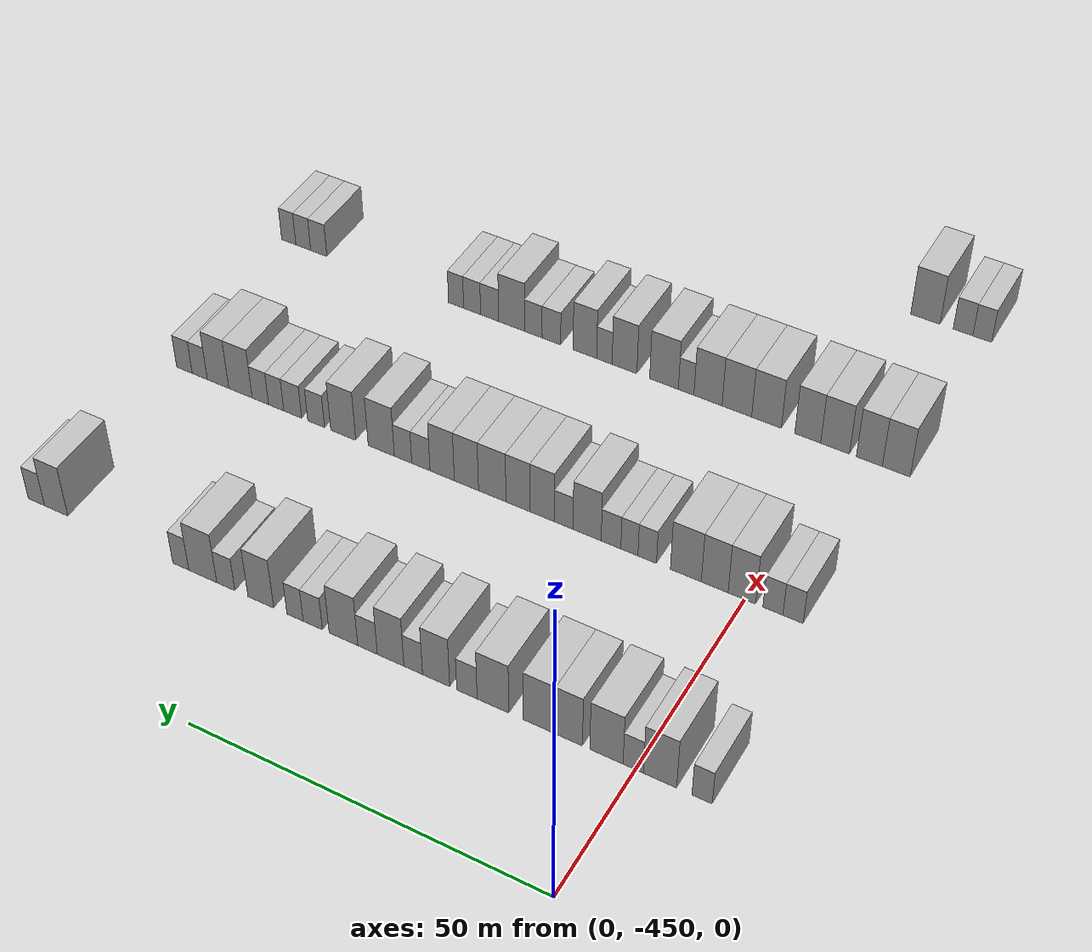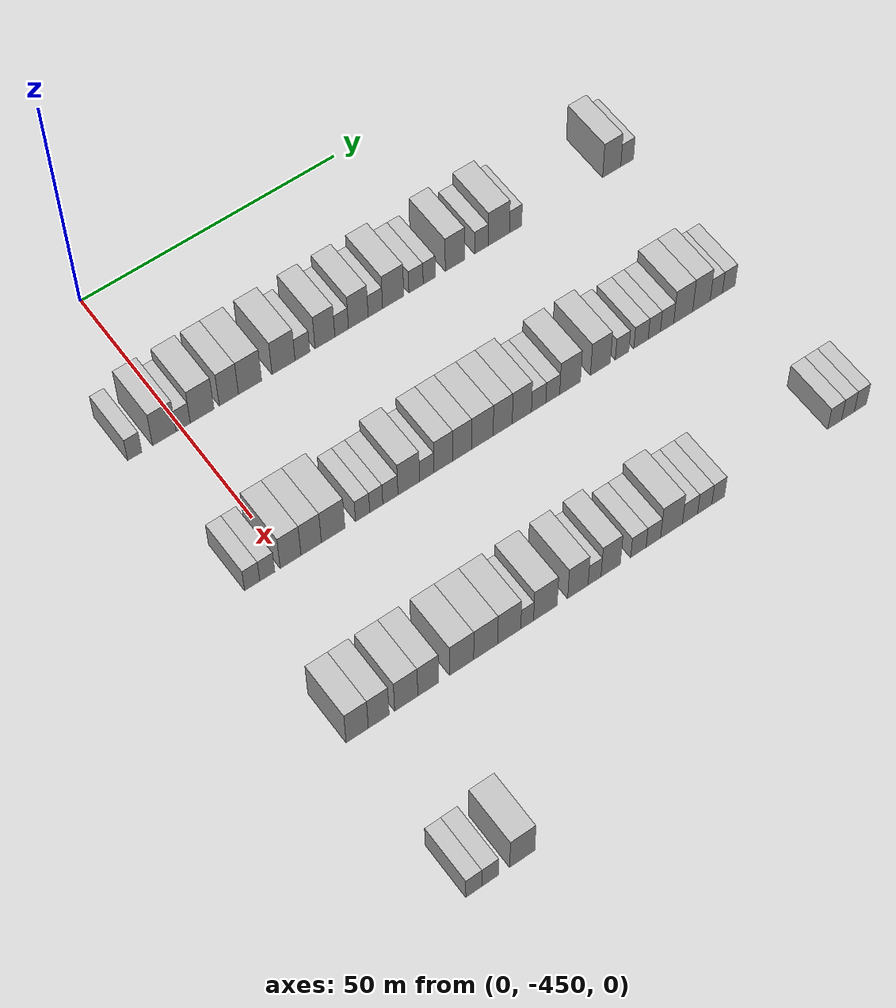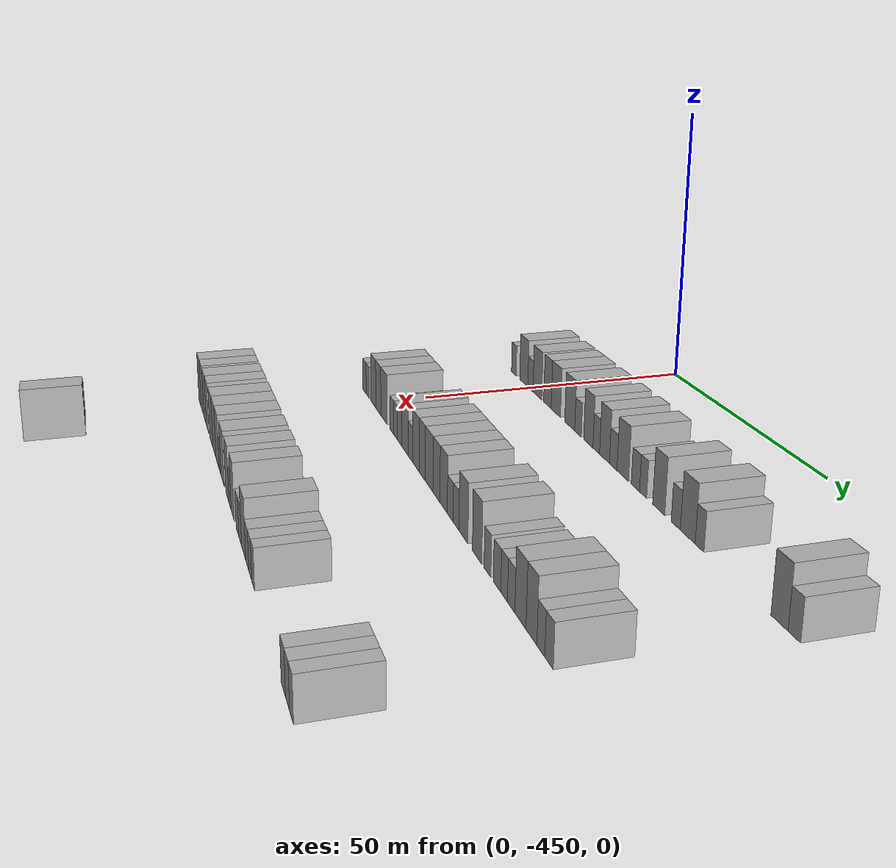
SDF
<sdf version="1.6">
 <world name="default">
  <model name="building_1">
   <static>1</static>
   <pose>25.0000 -458.6849 0 0.000000 0.000000 0.000000</pose>
   <link name="link">
    <pose>0 0 3.00 0 0 0</pose>
    <collision name="collision"><geometry><box><size>10.0000 2.6303 6.0000</size></box></geometry></collision>
    <visual name="visual">
     <cast_shadows>0</cast_shadows>
     <geometry><box><size>10.0000 2.6303 6.0000</size></box></geometry>
     <material>
      <script>
       <uri>model://HANNAS_wall/materials/scripts</uri>
       <uri>model://HANNAS_wall/materials/textures</uri>
       <name>vrc/HANNAS_wall</name>
      </script>
     </material>
    </visual>
   </link>
  </model>
  <model name="building_2">
   <static>1</static>
   <pose>25.0000 -453.1732 0 0.000000 0.000000 0.000000</pose>
   <link name="link">
    <pose>0 0 4.50 0 0 0</pose>
    <collision name="collision"><geometry><box><size>10.0000 4.3930 9.0000</size></box></geometry></collision>
    <visual name="visual">
     <cast_shadows>0</cast_shadows>
     <geometry><box><size>10.0000 4.3930 9.0000</size></box></geometry>
     <material>
      <script>
       <uri>model://HANNAS_wall/materials/scripts</uri>
       <uri>model://HANNAS_wall/materials/textures</uri>
       <name>vrc/HANNAS_wall</name>
      </script>
     </material>
    </visual>
   </link>
  </model>
  <model name="building_3">
   <static>1</static>
   <pose>25.0000 -449.6349 0 0.000000 0.000000 0.000000</pose>
   <link name="link">
    <pose>0 0 3.00 0 0 0</pose>
    <collision name="collision"><geometry><box><size>10.0000 2.6837 6.0000</size></box></geometry></collision>
    <visual name="visual">
     <cast_shadows>0</cast_shadows>
     <geometry><box><size>10.0000 2.6837 6.0000</size></box></geometry>
     <material>
      <script>
       <uri>model://HANNAS_wall/materials/scripts</uri>
       <uri>model://HANNAS_wall/materials/textures</uri>
       <name>vrc/HANNAS_wall</name>
      </script>
     </material>
    </visual>
   </link>
  </model>
  <model name="building_4">
   <static>1</static>
   <pose>25.0000 -446.0684 0 0.000000 0.000000 0.000000</pose>
   <link name="link">
    <pose>0 0 4.50 0 0 0</pose>
    <collision name="collision"><geometry><box><size>10.0000 4.4493 9.0000</size></box></geometry></collision>
    <visual name="visual">
     <cast_shadows>0</cast_shadows>
     <geometry><box><size>10.0000 4.4493 9.0000</size></box></geometry>
     <material>
      <script>
       <uri>model://HANNAS_wall/materials/scripts</uri>
       <uri>model://HANNAS_wall/materials/textures</uri>
       <name>vrc/HANNAS_wall</name>
      </script>
     </material>
    </visual>
   </link>
  </model>
  <model name="building_5">
   <static>1</static>
   <pose>25.0000 -441.0170 0 0.000000 0.000000 0.000000</pose>
   <link name="link">
    <pose>0 0 4.50 0 0 0</pose>
    <collision name="collision"><geometry><box><size>10.0000 3.6536 9.0000</size></box></geometry></collision>
    <visual name="visual">
     <cast_shadows>0</cast_shadows>
     <geometry><box><size>10.0000 3.6536 9.0000</size></box></geometry>
     <material>
      <script>
       <uri>model://HANNAS_wall/materials/scripts</uri>
       <uri>model://HANNAS_wall/materials/textures</uri>
       <name>vrc/HANNAS_wall</name>
      </script>
     </material>
    </visual>
   </link>
  </model>
  <model name="building_6">
   <static>1</static>
   <pose>25.0000 -436.9849 0 0.000000 0.000000 0.000000</pose>
   <link name="link">
    <pose>0 0 4.50 0 0 0</pose>
    <collision name="collision"><geometry><box><size>10.0000 4.4105 9.0000</size></box></geometry></collision>
    <visual name="visual">
     <cast_shadows>0</cast_shadows>
     <geometry><box><size>10.0000 4.4105 9.0000</size></box></geometry>
     <material>
      <script>
       <uri>model://HANNAS_wall/materials/scripts</uri>
       <uri>model://HANNAS_wall/materials/textures</uri>
       <name>vrc/HANNAS_wall</name>
      </script>
     </material>
    </visual>
   </link>
  </model>
  <model name="building_7">
   <static>1</static>
   <pose>25.0000 -430.5665 0 0.000000 0.000000 0.000000</pose>
   <link name="link">
    <pose>0 0 4.50 0 0 0</pose>
    <collision name="collision"><geometry><box><size>10.0000 4.4264 9.0000</size></box></geometry></collision>
    <visual name="visual">
     <cast_shadows>0</cast_shadows>
     <geometry><box><size>10.0000 4.4264 9.0000</size></box></geometry>
     <material>
      <script>
       <uri>model://HANNAS_wall/materials/scripts</uri>
       <uri>model://HANNAS_wall/materials/textures</uri>
       <name>vrc/HANNAS_wall</name>
      </script>
     </material>
    </visual>
   </link>
  </model>
  <model name="building_8">
   <static>1</static>
   <pose>25.0000 -426.9174 0 0.000000 0.000000 0.000000</pose>
   <link name="link">
    <pose>0 0 3.00 0 0 0</pose>
    <collision name="collision"><geometry><box><size>10.0000 2.8718 6.0000</size></box></geometry></collision>
    <visual name="visual">
     <cast_shadows>0</cast_shadows>
     <geometry><box><size>10.0000 2.8718 6.0000</size></box></geometry>
     <material>
      <script>
       <uri>model://HANNAS_wall/materials/scripts</uri>
       <uri>model://HANNAS_wall/materials/textures</uri>
       <name>vrc/HANNAS_wall</name>
      </script>
     </material>
    </visual>
   </link>
  </model>
  <model name="building_9">
   <static>1</static>
   <pose>25.0000 -422.5503 0 0.000000 0.000000 0.000000</pose>
   <link name="link">
    <pose>0 0 4.50 0 0 0</pose>
    <collision name="collision"><geometry><box><size>10.0000 3.8625 9.0000</size></box></geometry></collision>
    <visual name="visual">
     <cast_shadows>0</cast_shadows>
     <geometry><box><size>10.0000 3.8625 9.0000</size></box></geometry>
     <material>
      <script>
       <uri>model://HANNAS_wall/materials/scripts</uri>
       <uri>model://HANNAS_wall/materials/textures</uri>
       <name>vrc/HANNAS_wall</name>
      </script>
     </material>
    </visual>
   </link>
  </model>
  <model name="building_10">
   <static>1</static>
   <pose>25.0000 -419.2839 0 0.000000 0.000000 0.000000</pose>
   <link name="link">
    <pose>0 0 3.00 0 0 0</pose>
    <collision name="collision"><geometry><box><size>10.0000 2.6702 6.0000</size></box></geometry></collision>
    <visual name="visual">
     <cast_shadows>0</cast_shadows>
     <geometry><box><size>10.0000 2.6702 6.0000</size></box></geometry>
     <material>
      <script>
       <uri>model://HANNAS_wall/materials/scripts</uri>
       <uri>model://HANNAS_wall/materials/textures</uri>
       <name>vrc/HANNAS_wall</name>
      </script>
     </material>
    </visual>
   </link>
  </model>
  <model name="building_11">
   <static>1</static>
   <pose>25.0000 -416.0189 0 0.000000 0.000000 0.000000</pose>
   <link name="link">
    <pose>0 0 4.50 0 0 0</pose>
    <collision name="collision"><geometry><box><size>10.0000 3.8599 9.0000</size></box></geometry></collision>
    <visual name="visual">
     <cast_shadows>0</cast_shadows>
     <geometry><box><size>10.0000 3.8599 9.0000</size></box></geometry>
     <material>
      <script>
       <uri>model://HANNAS_wall/materials/scripts</uri>
       <uri>model://HANNAS_wall/materials/textures</uri>
       <name>vrc/HANNAS_wall</name>
      </script>
     </material>
    </visual>
   </link>
  </model>
  <model name="building_12">
   <static>1</static>
   <pose>25.0000 -412.6643 0 0.000000 0.000000 0.000000</pose>
   <link name="link">
    <pose>0 0 3.00 0 0 0</pose>
    <collision name="collision"><geometry><box><size>10.0000 2.8493 6.0000</size></box></geometry></collision>
    <visual name="visual">
     <cast_shadows>0</cast_shadows>
     <geometry><box><size>10.0000 2.8493 6.0000</size></box></geometry>
     <material>
      <script>
       <uri>model://HANNAS_wall/materials/scripts</uri>
       <uri>model://HANNAS_wall/materials/textures</uri>
       <name>vrc/HANNAS_wall</name>
      </script>
     </material>
    </visual>
   </link>
  </model>
  <model name="building_13">
   <static>1</static>
   <pose>25.0000 -409.1376 0 0.000000 0.000000 0.000000</pose>
   <link name="link">
    <pose>0 0 4.50 0 0 0</pose>
    <collision name="collision"><geometry><box><size>10.0000 4.2041 9.0000</size></box></geometry></collision>
    <visual name="visual">
     <cast_shadows>0</cast_shadows>
     <geometry><box><size>10.0000 4.2041 9.0000</size></box></geometry>
     <material>
      <script>
       <uri>model://HANNAS_wall/materials/scripts</uri>
       <uri>model://HANNAS_wall/materials/textures</uri>
       <name>vrc/HANNAS_wall</name>
      </script>
     </material>
    </visual>
   </link>
  </model>
  <model name="building_14">
   <static>1</static>
   <pose>25.0000 -404.6051 0 0.000000 0.000000 0.000000</pose>
   <link name="link">
    <pose>0 0 3.00 0 0 0</pose>
    <collision name="collision"><geometry><box><size>10.0000 2.8609 6.0000</size></box></geometry></collision>
    <visual name="visual">
     <cast_shadows>0</cast_shadows>
     <geometry><box><size>10.0000 2.8609 6.0000</size></box></geometry>
     <material>
      <script>
       <uri>model://HANNAS_wall/materials/scripts</uri>
       <uri>model://HANNAS_wall/materials/textures</uri>
       <name>vrc/HANNAS_wall</name>
      </script>
     </material>
    </visual>
   </link>
  </model>
  <model name="building_15">
   <static>1</static>
   <pose>25.0000 -401.9557 0 0.000000 0.000000 0.000000</pose>
   <link name="link">
    <pose>0 0 3.00 0 0 0</pose>
    <collision name="collision"><geometry><box><size>10.0000 2.4379 6.0000</size></box></geometry></collision>
    <visual name="visual">
     <cast_shadows>0</cast_shadows>
     <geometry><box><size>10.0000 2.4379 6.0000</size></box></geometry>
     <material>
      <script>
       <uri>model://HANNAS_wall/materials/scripts</uri>
       <uri>model://HANNAS_wall/materials/textures</uri>
       <name>vrc/HANNAS_wall</name>
      </script>
     </material>
    </visual>
   </link>
  </model>
  <model name="building_16">
   <static>1</static>
   <pose>25.0000 -396.7870 0 0.000000 0.000000 0.000000</pose>
   <link name="link">
    <pose>0 0 4.50 0 0 0</pose>
    <collision name="collision"><geometry><box><size>10.0000 3.8993 9.0000</size></box></geometry></collision>
    <visual name="visual">
     <cast_shadows>0</cast_shadows>
     <geometry><box><size>10.0000 3.8993 9.0000</size></box></geometry>
     <material>
      <script>
       <uri>model://HANNAS_wall/materials/scripts</uri>
       <uri>model://HANNAS_wall/materials/textures</uri>
       <name>vrc/HANNAS_wall</name>
      </script>
     </material>
    </visual>
   </link>
  </model>
  <model name="building_17">
   <static>1</static>
   <pose>25.0000 -391.4373 0 0.000000 0.000000 0.000000</pose>
   <link name="link">
    <pose>0 0 3.00 0 0 0</pose>
    <collision name="collision"><geometry><box><size>10.0000 2.8001 6.0000</size></box></geometry></collision>
    <visual name="visual">
     <cast_shadows>0</cast_shadows>
     <geometry><box><size>10.0000 2.8001 6.0000</size></box></geometry>
     <material>
      <script>
       <uri>model://HANNAS_wall/materials/scripts</uri>
       <uri>model://HANNAS_wall/materials/textures</uri>
       <name>vrc/HANNAS_wall</name>
      </script>
     </material>
    </visual>
   </link>
  </model>
  <model name="building_18">
   <static>1</static>
   <pose>25.0000 -387.8711 0 0.000000 0.000000 0.000000</pose>
   <link name="link">
    <pose>0 0 4.50 0 0 0</pose>
    <collision name="collision"><geometry><box><size>10.0000 4.3323 9.0000</size></box></geometry></collision>
    <visual name="visual">
     <cast_shadows>0</cast_shadows>
     <geometry><box><size>10.0000 4.3323 9.0000</size></box></geometry>
     <material>
      <script>
       <uri>model://HANNAS_wall/materials/scripts</uri>
       <uri>model://HANNAS_wall/materials/textures</uri>
       <name>vrc/HANNAS_wall</name>
      </script>
     </material>
    </visual>
   </link>
  </model>
  <model name="building_19">
   <static>1</static>
   <pose>25.0000 -384.4627 0 0.000000 0.000000 0.000000</pose>
   <link name="link">
    <pose>0 0 3.00 0 0 0</pose>
    <collision name="collision"><geometry><box><size>10.0000 2.4846 6.0000</size></box></geometry></collision>
    <visual name="visual">
     <cast_shadows>0</cast_shadows>
     <geometry><box><size>10.0000 2.4846 6.0000</size></box></geometry>
     <material>
      <script>
       <uri>model://HANNAS_wall/materials/scripts</uri>
       <uri>model://HANNAS_wall/materials/textures</uri>
       <name>vrc/HANNAS_wall</name>
      </script>
     </material>
    </visual>
   </link>
  </model>
  <model name="building_20">
   <static>1</static>
   <pose>25.0000 -364.5048 0 0.000000 0.000000 0.000000</pose>
   <link name="link">
    <pose>0 0 4.50 0 0 0</pose>
    <collision name="collision"><geometry><box><size>10.0000 3.8104 9.0000</size></box></geometry></collision>
    <visual name="visual">
     <cast_shadows>0</cast_shadows>
     <geometry><box><size>10.0000 3.8104 9.0000</size></box></geometry>
     <material>
      <script>
       <uri>model://HANNAS_wall/materials/scripts</uri>
       <uri>model://HANNAS_wall/materials/textures</uri>
       <name>vrc/HANNAS_wall</name>
      </script>
     </material>
    </visual>
   </link>
  </model>
  <model name="building_21">
   <static>1</static>
   <pose>25.0000 -361.2578 0 0.000000 0.000000 0.000000</pose>
   <link name="link">
    <pose>0 0 3.00 0 0 0</pose>
    <collision name="collision"><geometry><box><size>10.0000 2.6835 6.0000</size></box></geometry></collision>
    <visual name="visual">
     <cast_shadows>0</cast_shadows>
     <geometry><box><size>10.0000 2.6835 6.0000</size></box></geometry>
     <material>
      <script>
       <uri>model://HANNAS_wall/materials/scripts</uri>
       <uri>model://HANNAS_wall/materials/textures</uri>
       <name>vrc/HANNAS_wall</name>
      </script>
     </material>
    </visual>
   </link>
  </model>
  <model name="building_224">
   <static>1</static>
   <pose>55.0000 -456.6061 0 0.000000 0.000000 0.000000</pose>
   <link name="link">
    <pose>0 0 3.00 0 0 0</pose>
    <collision name="collision"><geometry><box><size>10.0000 2.7877 6.0000</size></box></geometry></collision>
    <visual name="visual">
     <cast_shadows>0</cast_shadows>
     <geometry><box><size>10.0000 2.7877 6.0000</size></box></geometry>
     <material>
      <script>
       <uri>model://HANNAS_wall/materials/scripts</uri>
       <uri>model://HANNAS_wall/materials/textures</uri>
       <name>vrc/HANNAS_wall</name>
      </script>
     </material>
    </visual>
   </link>
  </model>
  <model name="building_225">
   <static>1</static>
   <pose>55.0000 -453.8329 0 0.000000 0.000000 0.000000</pose>
   <link name="link">
    <pose>0 0 3.00 0 0 0</pose>
    <collision name="collision"><geometry><box><size>10.0000 2.7588 6.0000</size></box></geometry></collision>
    <visual name="visual">
     <cast_shadows>0</cast_shadows>
     <geometry><box><size>10.0000 2.7588 6.0000</size></box></geometry>
     <material>
      <script>
       <uri>model://HANNAS_wall/materials/scripts</uri>
       <uri>model://HANNAS_wall/materials/textures</uri>
       <name>vrc/HANNAS_wall</name>
      </script>
     </material>
    </visual>
   </link>
  </model>
  <model name="building_226">
   <static>1</static>
   <pose>55.0000 -449.5311 0 0.000000 0.000000 0.000000</pose>
   <link name="link">
    <pose>0 0 4.50 0 0 0</pose>
    <collision name="collision"><geometry><box><size>10.0000 3.8448 9.0000</size></box></geometry></collision>
    <visual name="visual">
     <cast_shadows>0</cast_shadows>
     <geometry><box><size>10.0000 3.8448 9.0000</size></box></geometry>
     <material>
      <script>
       <uri>model://HANNAS_wall/materials/scripts</uri>
       <uri>model://HANNAS_wall/materials/textures</uri>
       <name>vrc/HANNAS_wall</name>
      </script>
     </material>
    </visual>
   </link>
  </model>
  <model name="building_227">
   <static>1</static>
   <pose>55.0000 -445.7182 0 0.000000 0.000000 0.000000</pose>
   <link name="link">
    <pose>0 0 4.50 0 0 0</pose>
    <collision name="collision"><geometry><box><size>10.0000 3.7811 9.0000</size></box></geometry></collision>
    <visual name="visual">
     <cast_shadows>0</cast_shadows>
     <geometry><box><size>10.0000 3.7811 9.0000</size></box></geometry>
     <material>
      <script>
       <uri>model://HANNAS_wall/materials/scripts</uri>
       <uri>model://HANNAS_wall/materials/textures</uri>
       <name>vrc/HANNAS_wall</name>
      </script>
     </material>
    </visual>
   </link>
  </model>
  <model name="building_228">
   <static>1</static>
   <pose>55.0000 -441.6300 0 0.000000 0.000000 0.000000</pose>
   <link name="link">
    <pose>0 0 4.50 0 0 0</pose>
    <collision name="collision"><geometry><box><size>10.0000 4.3953 9.0000</size></box></geometry></collision>
    <visual name="visual">
     <cast_shadows>0</cast_shadows>
     <geometry><box><size>10.0000 4.3953 9.0000</size></box></geometry>
     <material>
      <script>
       <uri>model://HANNAS_wall/materials/scripts</uri>
       <uri>model://HANNAS_wall/materials/textures</uri>
       <name>vrc/HANNAS_wall</name>
      </script>
     </material>
    </visual>
   </link>
  </model>
  <model name="building_229">
   <static>1</static>
   <pose>55.0000 -436.0967 0 0.000000 0.000000 0.000000</pose>
   <link name="link">
    <pose>0 0 3.00 0 0 0</pose>
    <collision name="collision"><geometry><box><size>10.0000 2.6712 6.0000</size></box></geometry></collision>
    <visual name="visual">
     <cast_shadows>0</cast_shadows>
     <geometry><box><size>10.0000 2.6712 6.0000</size></box></geometry>
     <material>
      <script>
       <uri>model://HANNAS_wall/materials/scripts</uri>
       <uri>model://HANNAS_wall/materials/textures</uri>
       <name>vrc/HANNAS_wall</name>
      </script>
     </material>
    </visual>
   </link>
  </model>
  <model name="building_230">
   <static>1</static>
   <pose>55.0000 -433.5242 0 0.000000 0.000000 0.000000</pose>
   <link name="link">
    <pose>0 0 3.00 0 0 0</pose>
    <collision name="collision"><geometry><box><size>10.0000 2.4739 6.0000</size></box></geometry></collision>
    <visual name="visual">
     <cast_shadows>0</cast_shadows>
     <geometry><box><size>10.0000 2.4739 6.0000</size></box></geometry>
     <material>
      <script>
       <uri>model://HANNAS_wall/materials/scripts</uri>
       <uri>model://HANNAS_wall/materials/textures</uri>
       <name>vrc/HANNAS_wall</name>
      </script>
     </material>
    </visual>
   </link>
  </model>
  <model name="building_231">
   <static>1</static>
   <pose>55.0000 -430.8513 0 0.000000 0.000000 0.000000</pose>
   <link name="link">
    <pose>0 0 3.00 0 0 0</pose>
    <collision name="collision"><geometry><box><size>10.0000 2.8718 6.0000</size></box></geometry></collision>
    <visual name="visual">
     <cast_shadows>0</cast_shadows>
     <geometry><box><size>10.0000 2.8718 6.0000</size></box></geometry>
     <material>
      <script>
       <uri>model://HANNAS_wall/materials/scripts</uri>
       <uri>model://HANNAS_wall/materials/textures</uri>
       <name>vrc/HANNAS_wall</name>
      </script>
     </material>
    </visual>
   </link>
  </model>
  <model name="building_232">
   <static>1</static>
   <pose>55.0000 -427.3459 0 0.000000 0.000000 0.000000</pose>
   <link name="link">
    <pose>0 0 4.50 0 0 0</pose>
    <collision name="collision"><geometry><box><size>10.0000 4.1389 9.0000</size></box></geometry></collision>
    <visual name="visual">
     <cast_shadows>0</cast_shadows>
     <geometry><box><size>10.0000 4.1389 9.0000</size></box></geometry>
     <material>
      <script>
       <uri>model://HANNAS_wall/materials/scripts</uri>
       <uri>model://HANNAS_wall/materials/textures</uri>
       <name>vrc/HANNAS_wall</name>
      </script>
     </material>
    </visual>
   </link>
  </model>
  <model name="building_233">
   <static>1</static>
   <pose>55.0000 -423.9011 0 0.000000 0.000000 0.000000</pose>
   <link name="link">
    <pose>0 0 3.00 0 0 0</pose>
    <collision name="collision"><geometry><box><size>10.0000 2.7508 6.0000</size></box></geometry></collision>
    <visual name="visual">
     <cast_shadows>0</cast_shadows>
     <geometry><box><size>10.0000 2.7508 6.0000</size></box></geometry>
     <material>
      <script>
       <uri>model://HANNAS_wall/materials/scripts</uri>
       <uri>model://HANNAS_wall/materials/textures</uri>
       <name>vrc/HANNAS_wall</name>
      </script>
     </material>
    </visual>
   </link>
  </model>
  <model name="building_234">
   <static>1</static>
   <pose>55.0000 -420.6962 0 0.000000 0.000000 0.000000</pose>
   <link name="link">
    <pose>0 0 4.50 0 0 0</pose>
    <collision name="collision"><geometry><box><size>10.0000 3.6589 9.0000</size></box></geometry></collision>
    <visual name="visual">
     <cast_shadows>0</cast_shadows>
     <geometry><box><size>10.0000 3.6589 9.0000</size></box></geometry>
     <material>
      <script>
       <uri>model://HANNAS_wall/materials/scripts</uri>
       <uri>model://HANNAS_wall/materials/textures</uri>
       <name>vrc/HANNAS_wall</name>
      </script>
     </material>
    </visual>
   </link>
  </model>
  <model name="building_235">
   <static>1</static>
   <pose>55.0000 -417.0601 0 0.000000 0.000000 0.000000</pose>
   <link name="link">
    <pose>0 0 4.50 0 0 0</pose>
    <collision name="collision"><geometry><box><size>10.0000 3.6134 9.0000</size></box></geometry></collision>
    <visual name="visual">
     <cast_shadows>0</cast_shadows>
     <geometry><box><size>10.0000 3.6134 9.0000</size></box></geometry>
     <material>
      <script>
       <uri>model://HANNAS_wall/materials/scripts</uri>
       <uri>model://HANNAS_wall/materials/textures</uri>
       <name>vrc/HANNAS_wall</name>
      </script>
     </material>
    </visual>
   </link>
  </model>
  <model name="building_236">
   <static>1</static>
   <pose>55.0000 -413.1614 0 0.000000 0.000000 0.000000</pose>
   <link name="link">
    <pose>0 0 4.50 0 0 0</pose>
    <collision name="collision"><geometry><box><size>10.0000 4.1840 9.0000</size></box></geometry></collision>
    <visual name="visual">
     <cast_shadows>0</cast_shadows>
     <geometry><box><size>10.0000 4.1840 9.0000</size></box></geometry>
     <material>
      <script>
       <uri>model://HANNAS_wall/materials/scripts</uri>
       <uri>model://HANNAS_wall/materials/textures</uri>
       <name>vrc/HANNAS_wall</name>
      </script>
     </material>
    </visual>
   </link>
  </model>
  <model name="building_237">
   <static>1</static>
   <pose>55.0000 -409.2132 0 0.000000 0.000000 0.000000</pose>
   <link name="link">
    <pose>0 0 4.50 0 0 0</pose>
    <collision name="collision"><geometry><box><size>10.0000 3.7124 9.0000</size></box></geometry></collision>
    <visual name="visual">
     <cast_shadows>0</cast_shadows>
     <geometry><box><size>10.0000 3.7124 9.0000</size></box></geometry>
     <material>
      <script>
       <uri>model://HANNAS_wall/materials/scripts</uri>
       <uri>model://HANNAS_wall/materials/textures</uri>
       <name>vrc/HANNAS_wall</name>
      </script>
     </material>
    </visual>
   </link>
  </model>
  <model name="building_238">
   <static>1</static>
   <pose>55.0000 -405.4696 0 0.000000 0.000000 0.000000</pose>
   <link name="link">
    <pose>0 0 4.50 0 0 0</pose>
    <collision name="collision"><geometry><box><size>10.0000 3.7749 9.0000</size></box></geometry></collision>
    <visual name="visual">
     <cast_shadows>0</cast_shadows>
     <geometry><box><size>10.0000 3.7749 9.0000</size></box></geometry>
     <material>
      <script>
       <uri>model://HANNAS_wall/materials/scripts</uri>
       <uri>model://HANNAS_wall/materials/textures</uri>
       <name>vrc/HANNAS_wall</name>
      </script>
     </material>
    </visual>
   </link>
  </model>
  <model name="building_239">
   <static>1</static>
   <pose>55.0000 -402.1595 0 0.000000 0.000000 0.000000</pose>
   <link name="link">
    <pose>0 0 3.00 0 0 0</pose>
    <collision name="collision"><geometry><box><size>10.0000 2.8452 6.0000</size></box></geometry></collision>
    <visual name="visual">
     <cast_shadows>0</cast_shadows>
     <geometry><box><size>10.0000 2.8452 6.0000</size></box></geometry>
     <material>
      <script>
       <uri>model://HANNAS_wall/materials/scripts</uri>
       <uri>model://HANNAS_wall/materials/textures</uri>
       <name>vrc/HANNAS_wall</name>
      </script>
     </material>
    </visual>
   </link>
  </model>
  <model name="building_240">
   <static>1</static>
   <pose>55.0000 -399.3659 0 0.000000 0.000000 0.000000</pose>
   <link name="link">
    <pose>0 0 3.00 0 0 0</pose>
    <collision name="collision"><geometry><box><size>10.0000 2.7420 6.0000</size></box></geometry></collision>
    <visual name="visual">
     <cast_shadows>0</cast_shadows>
     <geometry><box><size>10.0000 2.7420 6.0000</size></box></geometry>
     <material>
      <script>
       <uri>model://HANNAS_wall/materials/scripts</uri>
       <uri>model://HANNAS_wall/materials/textures</uri>
       <name>vrc/HANNAS_wall</name>
      </script>
     </material>
    </visual>
   </link>
  </model>
  <model name="building_241">
   <static>1</static>
   <pose>55.0000 -395.9237 0 0.000000 0.000000 0.000000</pose>
   <link name="link">
    <pose>0 0 4.50 0 0 0</pose>
    <collision name="collision"><geometry><box><size>10.0000 4.1423 9.0000</size></box></geometry></collision>
    <visual name="visual">
     <cast_shadows>0</cast_shadows>
     <geometry><box><size>10.0000 4.1423 9.0000</size></box></geometry>
     <material>
      <script>
       <uri>model://HANNAS_wall/materials/scripts</uri>
       <uri>model://HANNAS_wall/materials/textures</uri>
       <name>vrc/HANNAS_wall</name>
      </script>
     </material>
    </visual>
   </link>
  </model>
  <model name="building_242">
   <static>1</static>
   <pose>55.0000 -389.8553 0 0.000000 0.000000 0.000000</pose>
   <link name="link">
    <pose>0 0 4.50 0 0 0</pose>
    <collision name="collision"><geometry><box><size>10.0000 3.9946 9.0000</size></box></geometry></collision>
    <visual name="visual">
     <cast_shadows>0</cast_shadows>
     <geometry><box><size>10.0000 3.9946 9.0000</size></box></geometry>
     <material>
      <script>
       <uri>model://HANNAS_wall/materials/scripts</uri>
       <uri>model://HANNAS_wall/materials/textures</uri>
       <name>vrc/HANNAS_wall</name>
      </script>
     </material>
    </visual>
   </link>
  </model>
  <model name="building_243">
   <static>1</static>
   <pose>55.0000 -385.4934 0 0.000000 0.000000 0.000000</pose>
   <link name="link">
    <pose>0 0 3.00 0 0 0</pose>
    <collision name="collision"><geometry><box><size>10.0000 2.7291 6.0000</size></box></geometry></collision>
    <visual name="visual">
     <cast_shadows>0</cast_shadows>
     <geometry><box><size>10.0000 2.7291 6.0000</size></box></geometry>
     <material>
      <script>
       <uri>model://HANNAS_wall/materials/scripts</uri>
       <uri>model://HANNAS_wall/materials/textures</uri>
       <name>vrc/HANNAS_wall</name>
      </script>
     </material>
    </visual>
   </link>
  </model>
  <model name="building_244">
   <static>1</static>
   <pose>55.0000 -381.6677 0 0.000000 0.000000 0.000000</pose>
   <link name="link">
    <pose>0 0 3.00 0 0 0</pose>
    <collision name="collision"><geometry><box><size>10.0000 2.9225 6.0000</size></box></geometry></collision>
    <visual name="visual">
     <cast_shadows>0</cast_shadows>
     <geometry><box><size>10.0000 2.9225 6.0000</size></box></geometry>
     <material>
      <script>
       <uri>model://HANNAS_wall/materials/scripts</uri>
       <uri>model://HANNAS_wall/materials/textures</uri>
       <name>vrc/HANNAS_wall</name>
      </script>
     </material>
    </visual>
   </link>
  </model>
  <model name="building_245">
   <static>1</static>
   <pose>55.0000 -378.9571 0 0.000000 0.000000 0.000000</pose>
   <link name="link">
    <pose>0 0 3.00 0 0 0</pose>
    <collision name="collision"><geometry><box><size>10.0000 2.4987 6.0000</size></box></geometry></collision>
    <visual name="visual">
     <cast_shadows>0</cast_shadows>
     <geometry><box><size>10.0000 2.4987 6.0000</size></box></geometry>
     <material>
      <script>
       <uri>model://HANNAS_wall/materials/scripts</uri>
       <uri>model://HANNAS_wall/materials/textures</uri>
       <name>vrc/HANNAS_wall</name>
      </script>
     </material>
    </visual>
   </link>
  </model>
  <model name="building_246">
   <static>1</static>
   <pose>55.0000 -376.3479 0 0.000000 0.000000 0.000000</pose>
   <link name="link">
    <pose>0 0 3.00 0 0 0</pose>
    <collision name="collision"><geometry><box><size>10.0000 2.7197 6.0000</size></box></geometry></collision>
    <visual name="visual">
     <cast_shadows>0</cast_shadows>
     <geometry><box><size>10.0000 2.7197 6.0000</size></box></geometry>
     <material>
      <script>
       <uri>model://HANNAS_wall/materials/scripts</uri>
       <uri>model://HANNAS_wall/materials/textures</uri>
       <name>vrc/HANNAS_wall</name>
      </script>
     </material>
    </visual>
   </link>
  </model>
  <model name="building_247">
   <static>1</static>
   <pose>55.0000 -373.0359 0 0.000000 0.000000 0.000000</pose>
   <link name="link">
    <pose>0 0 4.50 0 0 0</pose>
    <collision name="collision"><geometry><box><size>10.0000 3.9043 9.0000</size></box></geometry></collision>
    <visual name="visual">
     <cast_shadows>0</cast_shadows>
     <geometry><box><size>10.0000 3.9043 9.0000</size></box></geometry>
     <material>
      <script>
       <uri>model://HANNAS_wall/materials/scripts</uri>
       <uri>model://HANNAS_wall/materials/textures</uri>
       <name>vrc/HANNAS_wall</name>
      </script>
     </material>
    </visual>
   </link>
  </model>
  <model name="building_248">
   <static>1</static>
   <pose>55.0000 -369.2754 0 0.000000 0.000000 0.000000</pose>
   <link name="link">
    <pose>0 0 4.50 0 0 0</pose>
    <collision name="collision"><geometry><box><size>10.0000 3.6166 9.0000</size></box></geometry></collision>
    <visual name="visual">
     <cast_shadows>0</cast_shadows>
     <geometry><box><size>10.0000 3.6166 9.0000</size></box></geometry>
     <material>
      <script>
       <uri>model://HANNAS_wall/materials/scripts</uri>
       <uri>model://HANNAS_wall/materials/textures</uri>
       <name>vrc/HANNAS_wall</name>
      </script>
     </material>
    </visual>
   </link>
  </model>
  <model name="building_249">
   <static>1</static>
   <pose>55.0000 -366.1930 0 0.000000 0.000000 0.000000</pose>
   <link name="link">
    <pose>0 0 3.00 0 0 0</pose>
    <collision name="collision"><geometry><box><size>10.0000 2.5482 6.0000</size></box></geometry></collision>
    <visual name="visual">
     <cast_shadows>0</cast_shadows>
     <geometry><box><size>10.0000 2.5482 6.0000</size></box></geometry>
     <material>
      <script>
       <uri>model://HANNAS_wall/materials/scripts</uri>
       <uri>model://HANNAS_wall/materials/textures</uri>
       <name>vrc/HANNAS_wall</name>
      </script>
     </material>
    </visual>
   </link>
  </model>
  <model name="building_250">
   <static>1</static>
   <pose>55.0000 -363.6025 0 0.000000 0.000000 0.000000</pose>
   <link name="link">
    <pose>0 0 3.00 0 0 0</pose>
    <collision name="collision"><geometry><box><size>10.0000 2.6327 6.0000</size></box></geometry></collision>
    <visual name="visual">
     <cast_shadows>0</cast_shadows>
     <geometry><box><size>10.0000 2.6327 6.0000</size></box></geometry>
     <material>
      <script>
       <uri>model://HANNAS_wall/materials/scripts</uri>
       <uri>model://HANNAS_wall/materials/textures</uri>
       <name>vrc/HANNAS_wall</name>
      </script>
     </material>
    </visual>
   </link>
  </model>
  <model name="building_446">
   <static>1</static>
   <pose>85.0000 -457.9989 0 0.000000 0.000000 0.000000</pose>
   <link name="link">
    <pose>0 0 4.50 0 0 0</pose>
    <collision name="collision"><geometry><box><size>10.0000 4.0022 9.0000</size></box></geometry></collision>
    <visual name="visual">
     <cast_shadows>0</cast_shadows>
     <geometry><box><size>10.0000 4.0022 9.0000</size></box></geometry>
     <material>
      <script>
       <uri>model://HANNAS_wall/materials/scripts</uri>
       <uri>model://HANNAS_wall/materials/textures</uri>
       <name>vrc/HANNAS_wall</name>
      </script>
     </material>
    </visual>
   </link>
  </model>
  <model name="building_447">
   <static>1</static>
   <pose>85.0000 -454.1185 0 0.000000 0.000000 0.000000</pose>
   <link name="link">
    <pose>0 0 4.50 0 0 0</pose>
    <collision name="collision"><geometry><box><size>10.0000 3.7586 9.0000</size></box></geometry></collision>
    <visual name="visual">
     <cast_shadows>0</cast_shadows>
     <geometry><box><size>10.0000 3.7586 9.0000</size></box></geometry>
     <material>
      <script>
       <uri>model://HANNAS_wall/materials/scripts</uri>
       <uri>model://HANNAS_wall/materials/textures</uri>
       <name>vrc/HANNAS_wall</name>
      </script>
     </material>
    </visual>
   </link>
  </model>
  <model name="building_448">
   <static>1</static>
   <pose>85.0000 -449.1267 0 0.000000 0.000000 0.000000</pose>
   <link name="link">
    <pose>0 0 4.50 0 0 0</pose>
    <collision name="collision"><geometry><box><size>10.0000 4.2251 9.0000</size></box></geometry></collision>
    <visual name="visual">
     <cast_shadows>0</cast_shadows>
     <geometry><box><size>10.0000 4.2251 9.0000</size></box></geometry>
     <material>
      <script>
       <uri>model://HANNAS_wall/materials/scripts</uri>
       <uri>model://HANNAS_wall/materials/textures</uri>
       <name>vrc/HANNAS_wall</name>
      </script>
     </material>
    </visual>
   </link>
  </model>
  <model name="building_449">
   <static>1</static>
   <pose>85.0000 -445.1022 0 0.000000 0.000000 0.000000</pose>
   <link name="link">
    <pose>0 0 4.50 0 0 0</pose>
    <collision name="collision"><geometry><box><size>10.0000 3.8239 9.0000</size></box></geometry></collision>
    <visual name="visual">
     <cast_shadows>0</cast_shadows>
     <geometry><box><size>10.0000 3.8239 9.0000</size></box></geometry>
     <material>
      <script>
       <uri>model://HANNAS_wall/materials/scripts</uri>
       <uri>model://HANNAS_wall/materials/textures</uri>
       <name>vrc/HANNAS_wall</name>
      </script>
     </material>
    </visual>
   </link>
  </model>
  <model name="building_450">
   <static>1</static>
   <pose>85.0000 -438.9658 0 0.000000 0.000000 0.000000</pose>
   <link name="link">
    <pose>0 0 4.50 0 0 0</pose>
    <collision name="collision"><geometry><box><size>10.0000 4.4489 9.0000</size></box></geometry></collision>
    <visual name="visual">
     <cast_shadows>0</cast_shadows>
     <geometry><box><size>10.0000 4.4489 9.0000</size></box></geometry>
     <material>
      <script>
       <uri>model://HANNAS_wall/materials/scripts</uri>
       <uri>model://HANNAS_wall/materials/textures</uri>
       <name>vrc/HANNAS_wall</name>
      </script>
     </material>
    </visual>
   </link>
  </model>
  <model name="building_451">
   <static>1</static>
   <pose>85.0000 -434.4987 0 0.000000 0.000000 0.000000</pose>
   <link name="link">
    <pose>0 0 4.50 0 0 0</pose>
    <collision name="collision"><geometry><box><size>10.0000 4.4853 9.0000</size></box></geometry></collision>
    <visual name="visual">
     <cast_shadows>0</cast_shadows>
     <geometry><box><size>10.0000 4.4853 9.0000</size></box></geometry>
     <material>
      <script>
       <uri>model://HANNAS_wall/materials/scripts</uri>
       <uri>model://HANNAS_wall/materials/textures</uri>
       <name>vrc/HANNAS_wall</name>
      </script>
     </material>
    </visual>
   </link>
  </model>
  <model name="building_452">
   <static>1</static>
   <pose>85.0000 -430.1036 0 0.000000 0.000000 0.000000</pose>
   <link name="link">
    <pose>0 0 4.50 0 0 0</pose>
    <collision name="collision"><geometry><box><size>10.0000 4.3049 9.0000</size></box></geometry></collision>
    <visual name="visual">
     <cast_shadows>0</cast_shadows>
     <geometry><box><size>10.0000 4.3049 9.0000</size></box></geometry>
     <material>
      <script>
       <uri>model://HANNAS_wall/materials/scripts</uri>
       <uri>model://HANNAS_wall/materials/textures</uri>
       <name>vrc/HANNAS_wall</name>
      </script>
     </material>
    </visual>
   </link>
  </model>
  <model name="building_453">
   <static>1</static>
   <pose>85.0000 -426.7500 0 0.000000 0.000000 0.000000</pose>
   <link name="link">
    <pose>0 0 3.00 0 0 0</pose>
    <collision name="collision"><geometry><box><size>10.0000 2.4024 6.0000</size></box></geometry></collision>
    <visual name="visual">
     <cast_shadows>0</cast_shadows>
     <geometry><box><size>10.0000 2.4024 6.0000</size></box></geometry>
     <material>
      <script>
       <uri>model://HANNAS_wall/materials/scripts</uri>
       <uri>model://HANNAS_wall/materials/textures</uri>
       <name>vrc/HANNAS_wall</name>
      </script>
     </material>
    </visual>
   </link>
  </model>
  <model name="building_454">
   <static>1</static>
   <pose>85.0000 -423.3202 0 0.000000 0.000000 0.000000</pose>
   <link name="link">
    <pose>0 0 4.50 0 0 0</pose>
    <collision name="collision"><geometry><box><size>10.0000 4.4572 9.0000</size></box></geometry></collision>
    <visual name="visual">
     <cast_shadows>0</cast_shadows>
     <geometry><box><size>10.0000 4.4572 9.0000</size></box></geometry>
     <material>
      <script>
       <uri>model://HANNAS_wall/materials/scripts</uri>
       <uri>model://HANNAS_wall/materials/textures</uri>
       <name>vrc/HANNAS_wall</name>
      </script>
     </material>
    </visual>
   </link>
  </model>
  <model name="building_455">
   <static>1</static>
   <pose>85.0000 -417.1403 0 0.000000 0.000000 0.000000</pose>
   <link name="link">
    <pose>0 0 4.50 0 0 0</pose>
    <collision name="collision"><geometry><box><size>10.0000 3.9027 9.0000</size></box></geometry></collision>
    <visual name="visual">
     <cast_shadows>0</cast_shadows>
     <geometry><box><size>10.0000 3.9027 9.0000</size></box></geometry>
     <material>
      <script>
       <uri>model://HANNAS_wall/materials/scripts</uri>
       <uri>model://HANNAS_wall/materials/textures</uri>
       <name>vrc/HANNAS_wall</name>
      </script>
     </material>
    </visual>
   </link>
  </model>
  <model name="building_456">
   <static>1</static>
   <pose>85.0000 -413.9596 0 0.000000 0.000000 0.000000</pose>
   <link name="link">
    <pose>0 0 3.00 0 0 0</pose>
    <collision name="collision"><geometry><box><size>10.0000 2.4588 6.0000</size></box></geometry></collision>
    <visual name="visual">
     <cast_shadows>0</cast_shadows>
     <geometry><box><size>10.0000 2.4588 6.0000</size></box></geometry>
     <material>
      <script>
       <uri>model://HANNAS_wall/materials/scripts</uri>
       <uri>model://HANNAS_wall/materials/textures</uri>
       <name>vrc/HANNAS_wall</name>
      </script>
     </material>
    </visual>
   </link>
  </model>
  <model name="building_457">
   <static>1</static>
   <pose>85.0000 -410.8642 0 0.000000 0.000000 0.000000</pose>
   <link name="link">
    <pose>0 0 4.50 0 0 0</pose>
    <collision name="collision"><geometry><box><size>10.0000 3.7320 9.0000</size></box></geometry></collision>
    <visual name="visual">
     <cast_shadows>0</cast_shadows>
     <geometry><box><size>10.0000 3.7320 9.0000</size></box></geometry>
     <material>
      <script>
       <uri>model://HANNAS_wall/materials/scripts</uri>
       <uri>model://HANNAS_wall/materials/textures</uri>
       <name>vrc/HANNAS_wall</name>
      </script>
     </material>
    </visual>
   </link>
  </model>
  <model name="building_458">
   <static>1</static>
   <pose>85.0000 -405.5009 0 0.000000 0.000000 0.000000</pose>
   <link name="link">
    <pose>0 0 3.00 0 0 0</pose>
    <collision name="collision"><geometry><box><size>10.0000 2.9945 6.0000</size></box></geometry></collision>
    <visual name="visual">
     <cast_shadows>0</cast_shadows>
     <geometry><box><size>10.0000 2.9945 6.0000</size></box></geometry>
     <material>
      <script>
       <uri>model://HANNAS_wall/materials/scripts</uri>
       <uri>model://HANNAS_wall/materials/textures</uri>
       <name>vrc/HANNAS_wall</name>
      </script>
     </material>
    </visual>
   </link>
  </model>
  <model name="building_459">
   <static>1</static>
   <pose>85.0000 -402.5918 0 0.000000 0.000000 0.000000</pose>
   <link name="link">
    <pose>0 0 3.00 0 0 0</pose>
    <collision name="collision"><geometry><box><size>10.0000 2.8238 6.0000</size></box></geometry></collision>
    <visual name="visual">
     <cast_shadows>0</cast_shadows>
     <geometry><box><size>10.0000 2.8238 6.0000</size></box></geometry>
     <material>
      <script>
       <uri>model://HANNAS_wall/materials/scripts</uri>
       <uri>model://HANNAS_wall/materials/textures</uri>
       <name>vrc/HANNAS_wall</name>
      </script>
     </material>
    </visual>
   </link>
  </model>
  <model name="building_460">
   <static>1</static>
   <pose>85.0000 -399.0524 0 0.000000 0.000000 0.000000</pose>
   <link name="link">
    <pose>0 0 4.50 0 0 0</pose>
    <collision name="collision"><geometry><box><size>10.0000 4.2548 9.0000</size></box></geometry></collision>
    <visual name="visual">
     <cast_shadows>0</cast_shadows>
     <geometry><box><size>10.0000 4.2548 9.0000</size></box></geometry>
     <material>
      <script>
       <uri>model://HANNAS_wall/materials/scripts</uri>
       <uri>model://HANNAS_wall/materials/textures</uri>
       <name>vrc/HANNAS_wall</name>
      </script>
     </material>
    </visual>
   </link>
  </model>
  <model name="building_461">
   <static>1</static>
   <pose>85.0000 -395.4313 0 0.000000 0.000000 0.000000</pose>
   <link name="link">
    <pose>0 0 3.00 0 0 0</pose>
    <collision name="collision"><geometry><box><size>10.0000 2.9874 6.0000</size></box></geometry></collision>
    <visual name="visual">
     <cast_shadows>0</cast_shadows>
     <geometry><box><size>10.0000 2.9874 6.0000</size></box></geometry>
     <material>
      <script>
       <uri>model://HANNAS_wall/materials/scripts</uri>
       <uri>model://HANNAS_wall/materials/textures</uri>
       <name>vrc/HANNAS_wall</name>
      </script>
     </material>
    </visual>
   </link>
  </model>
  <model name="building_462">
   <static>1</static>
   <pose>85.0000 -392.5261 0 0.000000 0.000000 0.000000</pose>
   <link name="link">
    <pose>0 0 3.00 0 0 0</pose>
    <collision name="collision"><geometry><box><size>10.0000 2.8230 6.0000</size></box></geometry></collision>
    <visual name="visual">
     <cast_shadows>0</cast_shadows>
     <geometry><box><size>10.0000 2.8230 6.0000</size></box></geometry>
     <material>
      <script>
       <uri>model://HANNAS_wall/materials/scripts</uri>
       <uri>model://HANNAS_wall/materials/textures</uri>
       <name>vrc/HANNAS_wall</name>
      </script>
     </material>
    </visual>
   </link>
  </model>
  <model name="building_463">
   <static>1</static>
   <pose>85.0000 -389.8578 0 0.000000 0.000000 0.000000</pose>
   <link name="link">
    <pose>0 0 3.00 0 0 0</pose>
    <collision name="collision"><geometry><box><size>10.0000 2.5136 6.0000</size></box></geometry></collision>
    <visual name="visual">
     <cast_shadows>0</cast_shadows>
     <geometry><box><size>10.0000 2.5136 6.0000</size></box></geometry>
     <material>
      <script>
       <uri>model://HANNAS_wall/materials/scripts</uri>
       <uri>model://HANNAS_wall/materials/textures</uri>
       <name>vrc/HANNAS_wall</name>
      </script>
     </material>
    </visual>
   </link>
  </model>
  <model name="building_464">
   <static>1</static>
   <pose>85.0000 -366.3298 0 0.000000 0.000000 0.000000</pose>
   <link name="link">
    <pose>0 0 3.00 0 0 0</pose>
    <collision name="collision"><geometry><box><size>10.0000 2.8475 6.0000</size></box></geometry></collision>
    <visual name="visual">
     <cast_shadows>0</cast_shadows>
     <geometry><box><size>10.0000 2.8475 6.0000</size></box></geometry>
     <material>
      <script>
       <uri>model://HANNAS_wall/materials/scripts</uri>
       <uri>model://HANNAS_wall/materials/textures</uri>
       <name>vrc/HANNAS_wall</name>
      </script>
     </material>
    </visual>
   </link>
  </model>
  <model name="building_465">
   <static>1</static>
   <pose>85.0000 -363.6029 0 0.000000 0.000000 0.000000</pose>
   <link name="link">
    <pose>0 0 3.00 0 0 0</pose>
    <collision name="collision"><geometry><box><size>10.0000 2.6063 6.0000</size></box></geometry></collision>
    <visual name="visual">
     <cast_shadows>0</cast_shadows>
     <geometry><box><size>10.0000 2.6063 6.0000</size></box></geometry>
     <material>
      <script>
       <uri>model://HANNAS_wall/materials/scripts</uri>
       <uri>model://HANNAS_wall/materials/textures</uri>
       <name>vrc/HANNAS_wall</name>
      </script>
     </material>
    </visual>
   </link>
  </model>
  <model name="building_466">
   <static>1</static>
   <pose>85.0000 -361.0456 0 0.000000 0.000000 0.000000</pose>
   <link name="link">
    <pose>0 0 3.00 0 0 0</pose>
    <collision name="collision"><geometry><box><size>10.0000 2.5083 6.0000</size></box></geometry></collision>
    <visual name="visual">
     <cast_shadows>0</cast_shadows>
     <geometry><box><size>10.0000 2.5083 6.0000</size></box></geometry>
     <material>
      <script>
       <uri>model://HANNAS_wall/materials/scripts</uri>
       <uri>model://HANNAS_wall/materials/textures</uri>
       <name>vrc/HANNAS_wall</name>
      </script>
     </material>
    </visual>
   </link>
  </model>
  <model name="building_668">
   <static>1</static>
   <pose>115.0000 -458.5834 0 0.000000 0.000000 0.000000</pose>
   <link name="link">
    <pose>0 0 3.00 0 0 0</pose>
    <collision name="collision"><geometry><box><size>10.0000 2.8332 6.0000</size></box></geometry></collision>
    <visual name="visual">
     <cast_shadows>0</cast_shadows>
     <geometry><box><size>10.0000 2.8332 6.0000</size></box></geometry>
     <material>
      <script>
       <uri>model://HANNAS_wall/materials/scripts</uri>
       <uri>model://HANNAS_wall/materials/textures</uri>
       <name>vrc/HANNAS_wall</name>
      </script>
     </material>
    </visual>
   </link>
  </model>
  <model name="building_669">
   <static>1</static>
   <pose>115.0000 -455.6879 0 0.000000 0.000000 0.000000</pose>
   <link name="link">
    <pose>0 0 3.00 0 0 0</pose>
    <collision name="collision"><geometry><box><size>10.0000 2.9580 6.0000</size></box></geometry></collision>
    <visual name="visual">
     <cast_shadows>0</cast_shadows>
     <geometry><box><size>10.0000 2.9580 6.0000</size></box></geometry>
     <material>
      <script>
       <uri>model://HANNAS_wall/materials/scripts</uri>
       <uri>model://HANNAS_wall/materials/textures</uri>
       <name>vrc/HANNAS_wall</name>
      </script>
     </material>
    </visual>
   </link>
  </model>
  <model name="building_670">
   <static>1</static>
   <pose>115.0000 -449.9618 0 0.000000 0.000000 0.000000</pose>
   <link name="link">
    <pose>0 0 4.50 0 0 0</pose>
    <collision name="collision"><geometry><box><size>10.0000 4.4942 9.0000</size></box></geometry></collision>
    <visual name="visual">
     <cast_shadows>0</cast_shadows>
     <geometry><box><size>10.0000 4.4942 9.0000</size></box></geometry>
     <material>
      <script>
       <uri>model://HANNAS_wall/materials/scripts</uri>
       <uri>model://HANNAS_wall/materials/textures</uri>
       <name>vrc/HANNAS_wall</name>
      </script>
     </material>
    </visual>
   </link>
  </model>
 </world>
</sdf>
